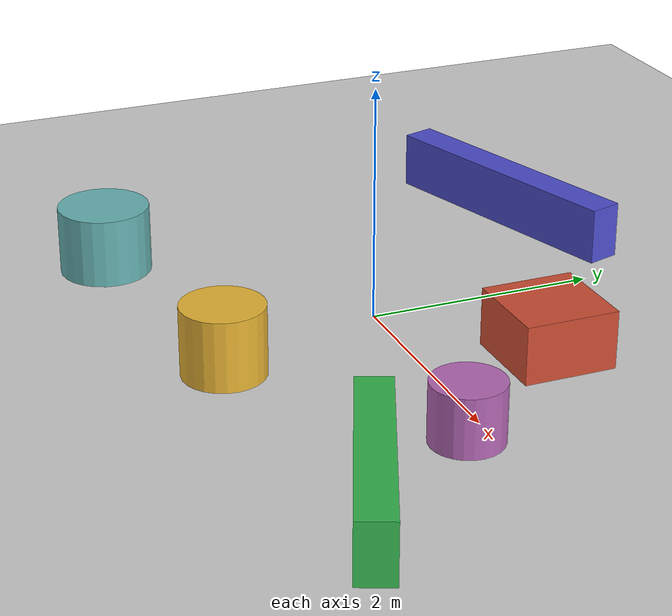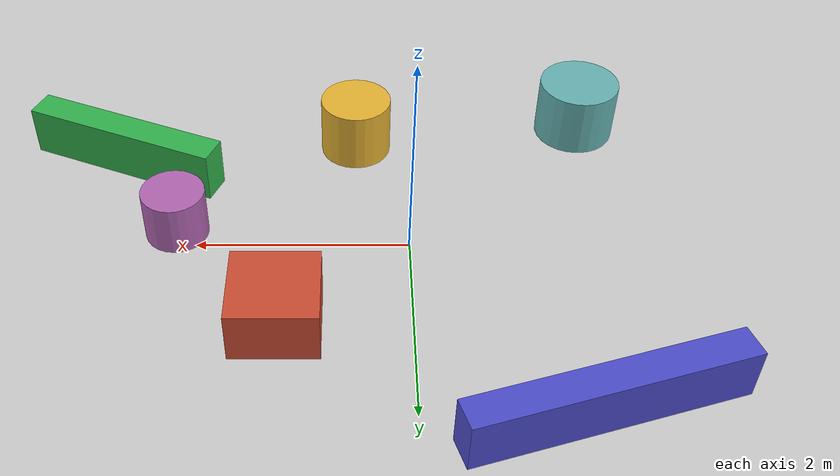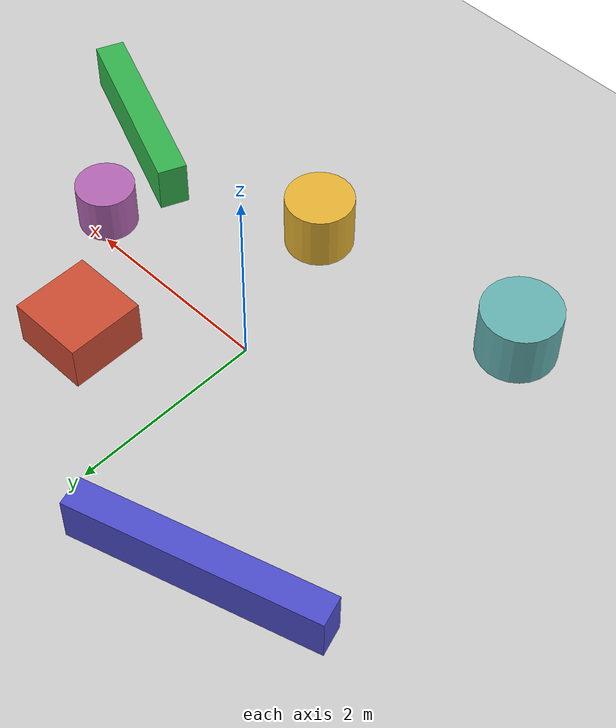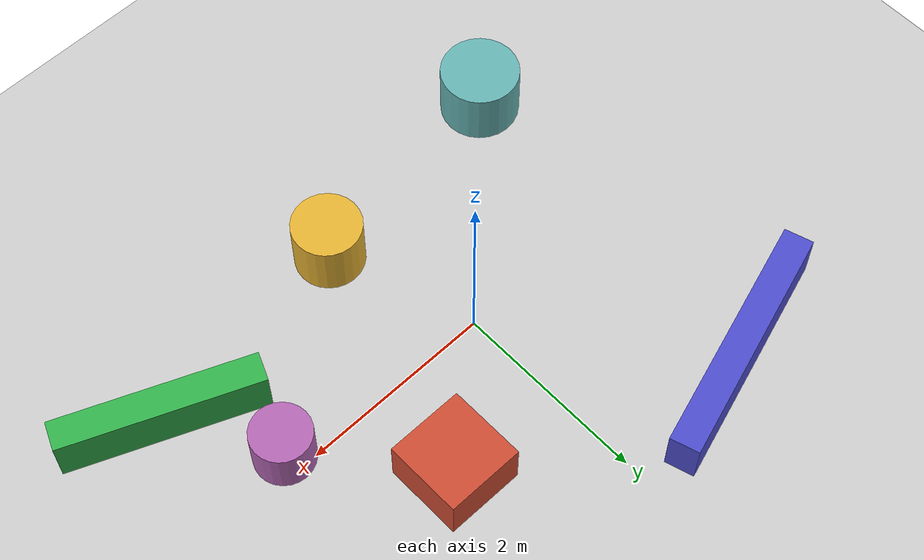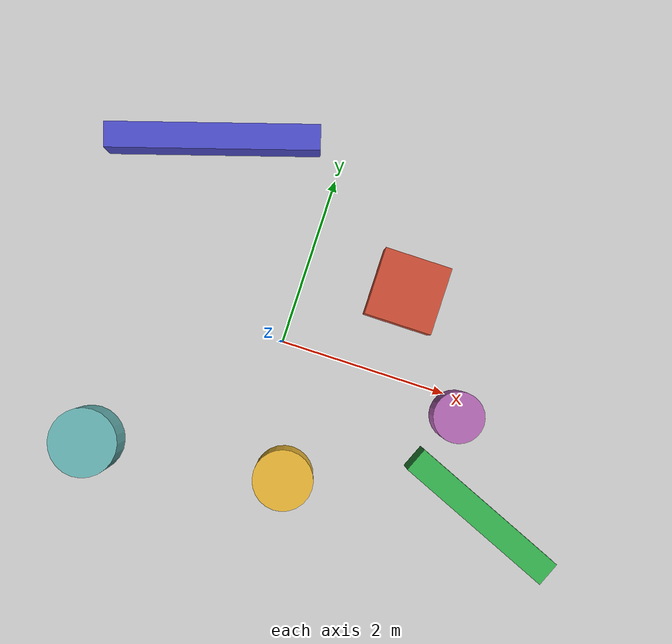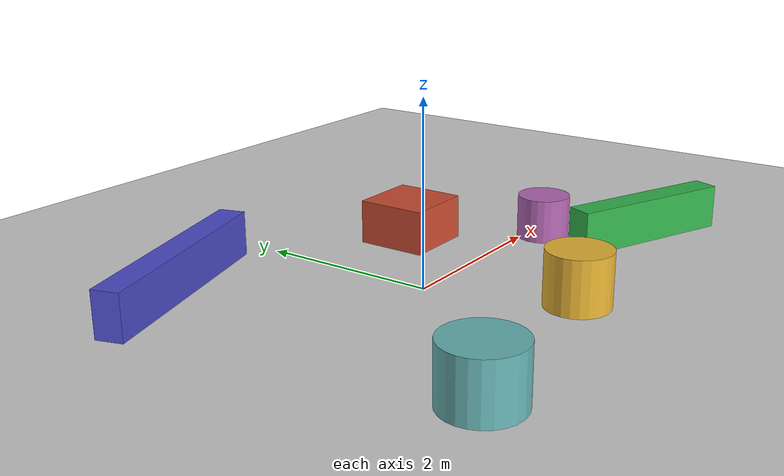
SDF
<sdf version='1.6'>
  <world name='default'>
    <!-- 全局光照 -->
    <include>
      <uri>model://sun</uri>
    </include>
    <!-- 地面 -->
    <include>
      <uri>model://ground_plane</uri>
    </include>

    <!-- 物理参数 -->
    <physics type="ode">
      <max_step_size>0.01</max_step_size>
      <real_time_factor>1</real_time_factor>
      <real_time_update_rate>100</real_time_update_rate>
    </physics>

    <!-- ========== 自建障碍物场景（内嵌 SDF，不依赖外部模型） ========== -->
    <!-- 中心方块障碍 -->
    <model name='block_center'>
      <pose>1.2 1.0 0.25 0 0 0</pose>
      <static>true</static>
      <link name='link'>
        <collision name='col'>
          <geometry>
            <box><size>0.8 0.8 0.5</size></box>
          </geometry>
        </collision>
        <visual name='vis'>
          <geometry>
            <box><size>0.8 0.8 0.5</size></box>
          </geometry>
          <material><ambient>0.8 0.3 0.2 1</ambient><diffuse>0.8 0.3 0.2 1</diffuse></material>
        </visual>
      </link>
    </model>

    <!-- 左侧墙壁 1 -->
    <model name='wall_left1'>
      <pose>-1.5 2.0 0.25 0 0 0.3</pose>
      <static>true</static>
      <link name='link'>
        <collision name='col'>
          <geometry>
            <box><size>2.5 0.3 0.5</size></box>
          </geometry>
        </collision>
        <visual name='vis'>
          <geometry>
            <box><size>2.5 0.3 0.5</size></box>
          </geometry>
          <material><ambient>0.3 0.3 0.8 1</ambient><diffuse>0.3 0.3 0.8 1</diffuse></material>
        </visual>
      </link>
    </model>

    <!-- 右侧墙壁 2 -->
    <model name='wall_right2'>
      <pose>2.8 -1.2 0.25 0 0 -0.4</pose>
      <static>true</static>
      <link name='link'>
        <collision name='col'>
          <geometry>
            <box><size>2.0 0.3 0.5</size></box>
          </geometry>
        </collision>
        <visual name='vis'>
          <geometry>
            <box><size>2.0 0.3 0.5</size></box>
          </geometry>
          <material><ambient>0.2 0.7 0.3 1</ambient><diffuse>0.2 0.7 0.3 1</diffuse></material>
        </visual>
      </link>
    </model>

    <!-- 圆柱障碍 1 -->
    <model name='cyl_1'>
      <pose>0.5 -1.5 0.3 0 0 0</pose>
      <static>true</static>
      <link name='link'>
        <collision name='col'>
          <geometry>
            <cylinder><radius>0.35</radius><length>0.6</length></cylinder>
          </geometry>
        </collision>
        <visual name='vis'>
          <geometry>
            <cylinder><radius>0.35</radius><length>0.6</length></cylinder>
          </geometry>
          <material><ambient>0.9 0.7 0.2 1</ambient><diffuse>0.9 0.7 0.2 1</diffuse></material>
        </visual>
      </link>
    </model>

    <!-- 圆柱障碍 2 -->
    <model name='cyl_2'>
      <pose>-1.8 -1.8 0.3 0 0 0</pose>
      <static>true</static>
      <link name='link'>
        <collision name='col'>
          <geometry>
            <cylinder><radius>0.4</radius><length>0.6</length></cylinder>
          </geometry>
        </collision>
        <visual name='vis'>
          <geometry>
            <cylinder><radius>0.4</radius><length>0.6</length></cylinder>
          </geometry>
          <material><ambient>0.4 0.7 0.7 1</ambient><diffuse>0.4 0.7 0.7 1</diffuse></material>
        </visual>
      </link>
    </model>

    <!-- 圆柱障碍 3 -->
    <model name='cyl_3'>
      <pose>2.2 -0.2 0.25 0 0 0</pose>
      <static>true</static>
      <link name='link'>
        <collision name='col'>
          <geometry>
            <cylinder><radius>0.3</radius><length>0.5</length></cylinder>
          </geometry>
        </collision>
        <visual name='vis'>
          <geometry>
            <cylinder><radius>0.3</radius><length>0.5</length></cylinder>
          </geometry>
          <material><ambient>0.7 0.4 0.7 1</ambient><diffuse>0.7 0.4 0.7 1</diffuse></material>
        </visual>
      </link>
    </model>

    <!-- 相机视角 -->
    <gui fullscreen='0'>
      <camera name='user_camera'>
        <pose>0.8 0.0 8.0 0 1.5708 0</pose>
        <view_controller>orbit</view_controller>
      </camera>
    </gui>
  </world>
</sdf>
